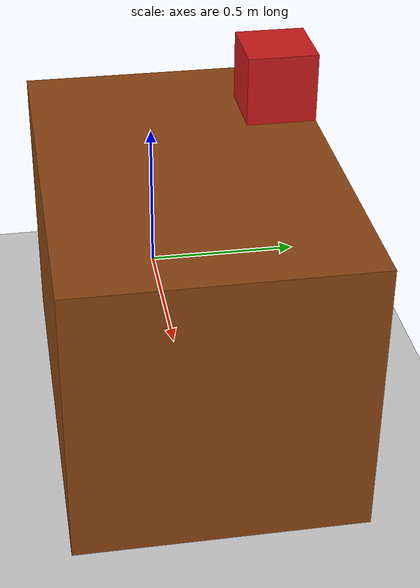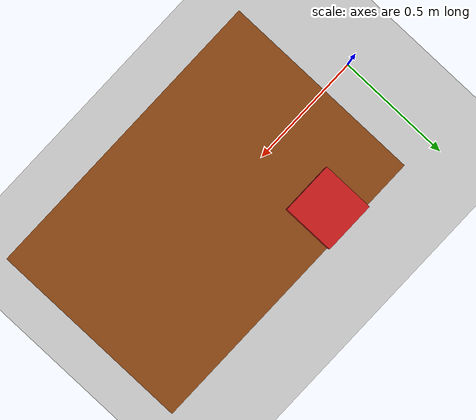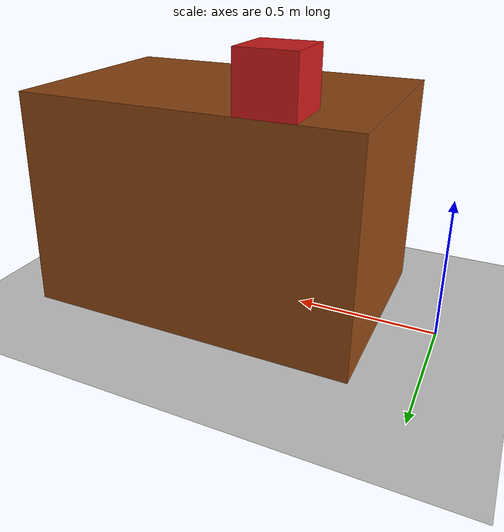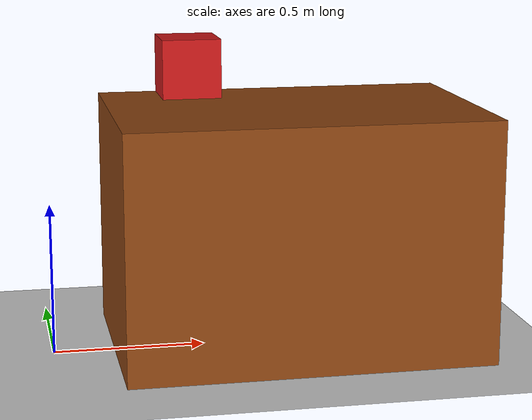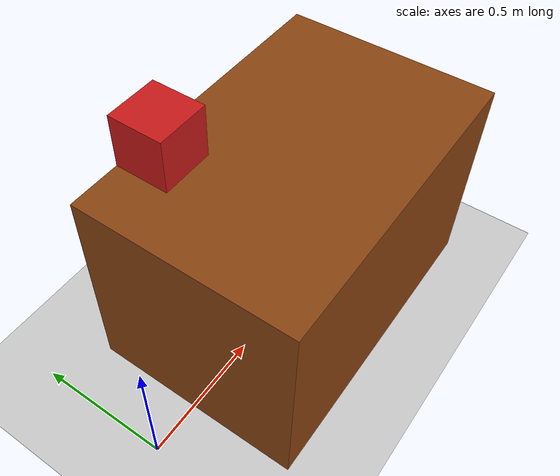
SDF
<?xml version="1.0" ?>
<sdf version="1.8">
  <world name="camera_world">

    <!-- Core Gazebo systems -->
    <plugin filename="ignition-gazebo-physics-system"
            name="ignition::gazebo::systems::Physics"/>

    <plugin filename="ignition-gazebo-user-commands-system"
            name="ignition::gazebo::systems::UserCommands"/>

    <plugin filename="ignition-gazebo-scene-broadcaster-system"
            name="ignition::gazebo::systems::SceneBroadcaster"/>

    <plugin filename="ignition-gazebo-sensors-system"
            name="ignition::gazebo::systems::Sensors">
      <render_engine>ogre2</render_engine>
    </plugin>

    <!-- Basic light -->
    <light type="directional" name="sun">
      <pose>0 0 10 0 0 0</pose>
      <diffuse>1 1 1 1</diffuse>
      <specular>1 1 1 1</specular>
      <direction>-0.5 0.5 -1</direction>
    </light>
    <!-- Sun -->

    <!-- Ground -->
    <model name="ground_plane">
      <static>true</static>
      <link name="link">
        <collision name="collision">
          <geometry>
            <plane>
              <normal>0 0 1</normal>
            </plane>
          </geometry>
        </collision>

        <visual name="visual">
          <geometry>
            <plane>
              <normal>0 0 1</normal>
              <size>100 100</size>
            </plane>
          </geometry>
        </visual>
      </link>
    </model>

    <!-- Desk -->
    <model name="desk">
      <static>true</static>
      <pose>0.8 0 0.4 0 0 0</pose>

      <link name="desk_link">

        <collision name="collision">
          <geometry>
            <box>
              <size>1.2 0.8 0.8</size>
            </box>
          </geometry>
        </collision>

        <visual name="visual">
          <geometry>
            <box>
              <size>1.2 0.8 0.8</size>
            </box>
          </geometry>
          <material>
            <ambient>0.55 0.27 0.07 1</ambient>
          </material>
        </visual>

      </link>
    </model>

    <!-- Box obstacle -->
    <model name="box">
      <static>false</static>
      <pose>0.5 0.3 0.9 0 0 0</pose>

      <link name="box_link">

        <collision name="collision">
          <geometry>
            <box>
              <size>0.2 0.2 0.2</size>
            </box>
          </geometry>
        </collision>

        <visual name="visual">
          <geometry>
            <box>
              <size>0.2 0.2 0.2</size>
            </box>
          </geometry>
          <material>
            <ambient>0.8 0.1 0.1 1</ambient>
          </material>
        </visual>

      </link>
    </model>

  </world>
</sdf>
